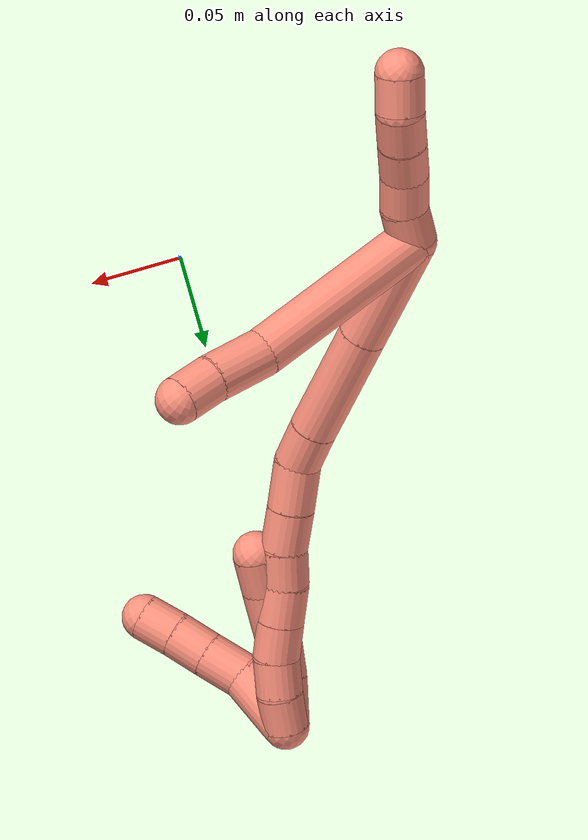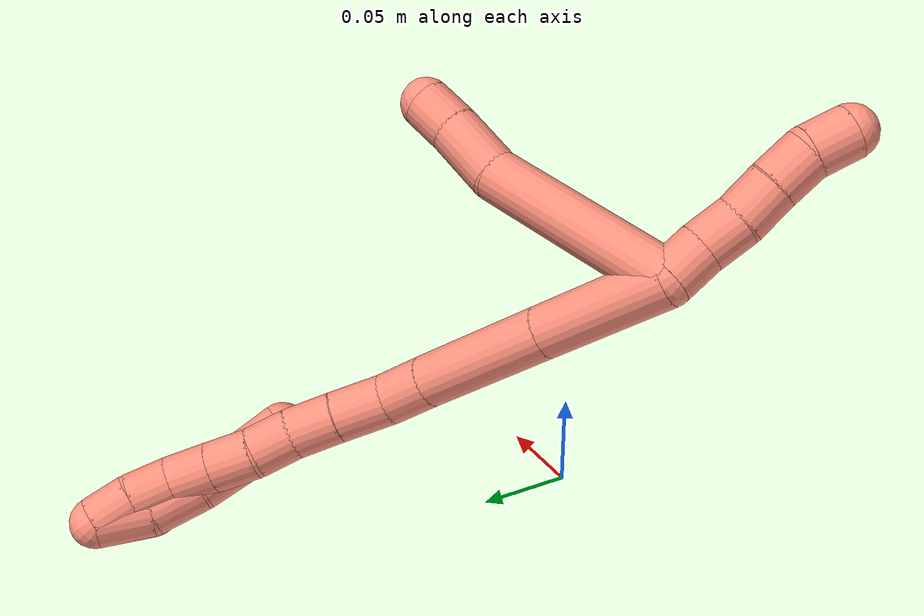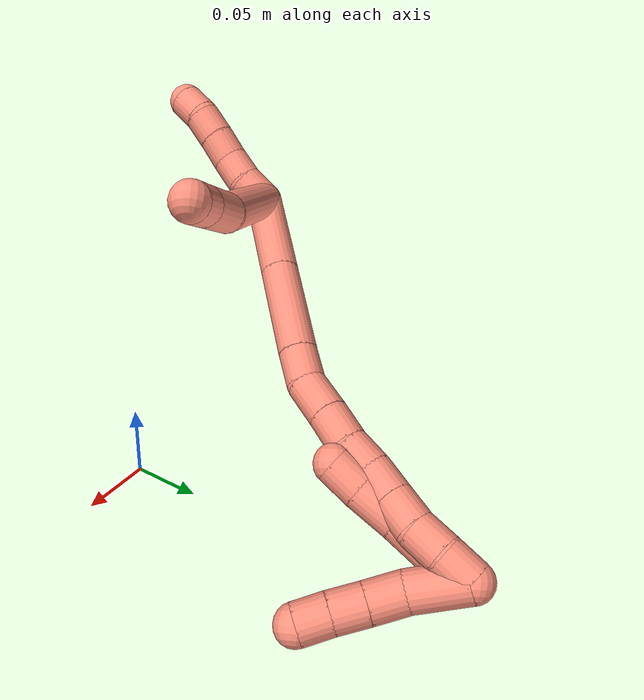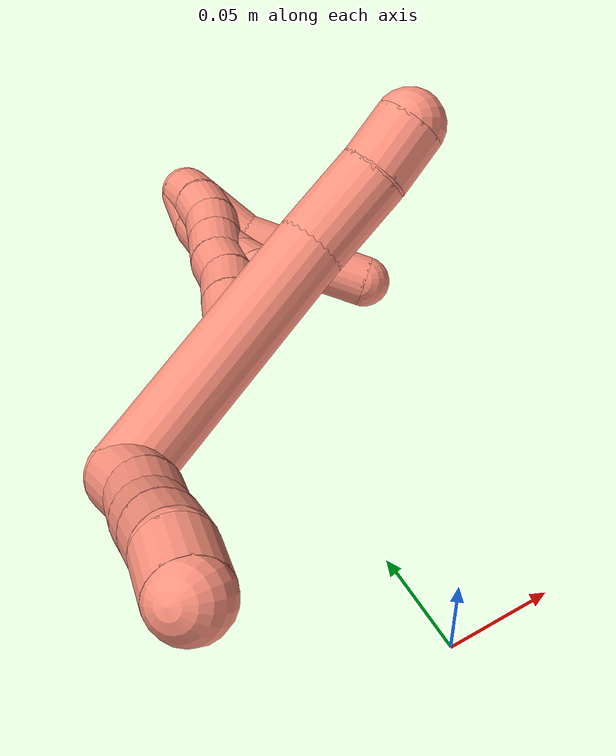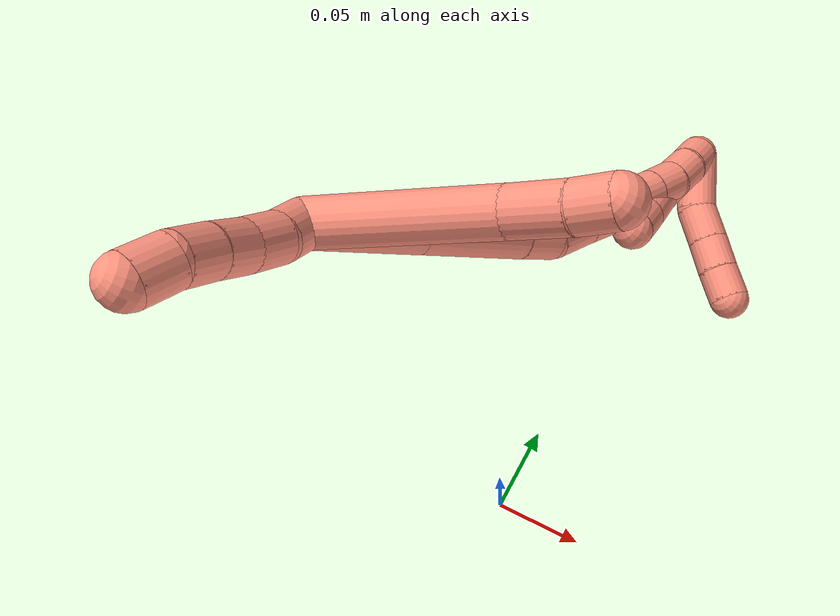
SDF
<sdf version="1.7">
 <world name="default">
  <model name="16">
   <static>0</static>
   <link name="16">
    <collision name="collision-cylinder-e_1_2_8">
     <pose>0.040269 0.012362 -0.024492 -2.67417 0.97273 -2.29546</pose>
     <geometry><cylinder><radius>0.0125</radius><length>0.097452</length></cylinder></geometry>
     <surface>
      <friction><ode><mu>1.16</mu><mu2>1.16</mu2><slip1>0</slip1><slip2>0</slip2></ode></friction>
      <contact><ode><kp>1e+06</kp><kd>1</kd><max_vel>0</max_vel><min_depth>0.001</min_depth></ode></contact>
     </surface>
    </collision>
    <visual name="visual-cylinder-e_1_2_8">
     <pose>0.040269 0.012362 -0.024492 -2.67417 0.97273 -2.29546</pose>
     <geometry><cylinder><radius>0.0125</radius><length>0.097452</length></cylinder></geometry>
     <material><ambient>1 0.576471 0.494118 1</ambient></material>
    </visual>
    <collision name="collision-cylinder-e_2_8_9">
     <pose>0.095536 0.027431 -0.053683 -2.61895 1.22386 -2.41343</pose>
     <geometry><cylinder><radius>0.0125</radius><length>0.031899</length></cylinder></geometry>
     <surface>
      <friction><ode><mu>1.16</mu><mu2>1.16</mu2><slip1>0</slip1><slip2>0</slip2></ode></friction>
      <contact><ode><kp>1e+06</kp><kd>1</kd><max_vel>0</max_vel><min_depth>0.001</min_depth></ode></contact>
     </surface>
    </collision>
    <visual name="visual-cylinder-e_2_8_9">
     <pose>0.095536 0.027431 -0.053683 -2.61895 1.22386 -2.41343</pose>
     <geometry><cylinder><radius>0.0125</radius><length>0.031899</length></cylinder></geometry>
     <material><ambient>1 0.576471 0.494118 1</ambient></material>
    </visual>
    <collision name="collision-cylinder-e_3_9_6">
     <pose>0.119949 0.03279 -0.061691 -2.46598 1.14754 -2.1459</pose>
     <geometry><cylinder><radius>0.0125</radius><length>0.020649</length></cylinder></geometry>
     <surface>
      <friction><ode><mu>1.16</mu><mu2>1.16</mu2><slip1>0</slip1><slip2>0</slip2></ode></friction>
      <contact><ode><kp>1e+06</kp><kd>1</kd><max_vel>0</max_vel><min_depth>0.001</min_depth></ode></contact>
     </surface>
    </collision>
    <visual name="visual-cylinder-e_3_9_6">
     <pose>0.119949 0.03279 -0.061691 -2.46598 1.14754 -2.1459</pose>
     <geometry><cylinder><radius>0.0125</radius><length>0.020649</length></cylinder></geometry>
     <material><ambient>1 0.576471 0.494118 1</ambient></material>
    </visual>
    <collision name="collision-cylinder-e_1_2_10">
     <pose>0.004128 -0.006058 0.006801 0.727687 0.425542 0.164166</pose>
     <geometry><cylinder><radius>0.0125</radius><length>0.02</length></cylinder></geometry>
     <surface>
      <friction><ode><mu>1.16</mu><mu2>1.16</mu2><slip1>0</slip1><slip2>0</slip2></ode></friction>
      <contact><ode><kp>1e+06</kp><kd>1</kd><max_vel>0</max_vel><min_depth>0.001</min_depth></ode></contact>
     </surface>
    </collision>
    <visual name="visual-cylinder-e_1_2_10">
     <pose>0.004128 -0.006058 0.006801 0.727687 0.425542 0.164166</pose>
     <geometry><cylinder><radius>0.0125</radius><length>0.02</length></cylinder></geometry>
     <material><ambient>1 0.576471 0.494118 1</ambient></material>
    </visual>
    <collision name="collision-cylinder-e_2_10_11">
     <pose>0.010929 -0.017238 0.021765 0.560309 0.270576 0.078289</pose>
     <geometry><cylinder><radius>0.0125</radius><length>0.02</length></cylinder></geometry>
     <surface>
      <friction><ode><mu>1.16</mu><mu2>1.16</mu2><slip1>0</slip1><slip2>0</slip2></ode></friction>
      <contact><ode><kp>1e+06</kp><kd>1</kd><max_vel>0</max_vel><min_depth>0.001</min_depth></ode></contact>
     </surface>
    </collision>
    <visual name="visual-cylinder-e_2_10_11">
     <pose>0.010929 -0.017238 0.021765 0.560309 0.270576 0.078289</pose>
     <geometry><cylinder><radius>0.0125</radius><length>0.02</length></cylinder></geometry>
     <material><ambient>1 0.576471 0.494118 1</ambient></material>
    </visual>
    <collision name="collision-cylinder-e_3_11_12">
     <pose>0.017542 -0.026579 0.038093 0.477015 0.405032 0.099764</pose>
     <geometry><cylinder><radius>0.0125</radius><length>0.02</length></cylinder></geometry>
     <surface>
      <friction><ode><mu>1.16</mu><mu2>1.16</mu2><slip1>0</slip1><slip2>0</slip2></ode></friction>
      <contact><ode><kp>1e+06</kp><kd>1</kd><max_vel>0</max_vel><min_depth>0.001</min_depth></ode></contact>
     </surface>
    </collision>
    <visual name="visual-cylinder-e_3_11_12">
     <pose>0.017542 -0.026579 0.038093 0.477015 0.405032 0.099764</pose>
     <geometry><cylinder><radius>0.0125</radius><length>0.02</length></cylinder></geometry>
     <material><ambient>1 0.576471 0.494118 1</ambient></material>
    </visual>
    <collision name="collision-cylinder-e_4_12_13">
     <pose>0.025087 -0.035504 0.054311 0.528812 0.368706 0.100886</pose>
     <geometry><cylinder><radius>0.0125</radius><length>0.02</length></cylinder></geometry>
     <surface>
      <friction><ode><mu>1.16</mu><mu2>1.16</mu2><slip1>0</slip1><slip2>0</slip2></ode></friction>
      <contact><ode><kp>1e+06</kp><kd>1</kd><max_vel>0</max_vel><min_depth>0.001</min_depth></ode></contact>
     </surface>
    </collision>
    <visual name="visual-cylinder-e_4_12_13">
     <pose>0.025087 -0.035504 0.054311 0.528812 0.368706 0.100886</pose>
     <geometry><cylinder><radius>0.0125</radius><length>0.02</length></cylinder></geometry>
     <material><ambient>1 0.576471 0.494118 1</ambient></material>
    </visual>
    <collision name="collision-cylinder-e_5_13_5">
     <pose>0.03008 -0.046944 0.069627 0.747689 0.139378 0.054752</pose>
     <geometry><cylinder><radius>0.0125</radius><length>0.02</length></cylinder></geometry>
     <surface>
      <friction><ode><mu>1.16</mu><mu2>1.16</mu2><slip1>0</slip1><slip2>0</slip2></ode></friction>
      <contact><ode><kp>1e+06</kp><kd>1</kd><max_vel>0</max_vel><min_depth>0.001</min_depth></ode></contact>
     </surface>
    </collision>
    <visual name="visual-cylinder-e_5_13_5">
     <pose>0.03008 -0.046944 0.069627 0.747689 0.139378 0.054752</pose>
     <geometry><cylinder><radius>0.0125</radius><length>0.02</length></cylinder></geometry>
     <material><ambient>1 0.576471 0.494118 1</ambient></material>
    </visual>
    <collision name="collision-cylinder-e_1_2_14">
     <pose>0.002317 0.009862 -0.029474 -2.81869 0.074413 -0.449381</pose>
     <geometry><cylinder><radius>0.0125</radius><length>0.062333</length></cylinder></geometry>
     <surface>
      <friction><ode><mu>1.16</mu><mu2>1.16</mu2><slip1>0</slip1><slip2>0</slip2></ode></friction>
      <contact><ode><kp>1e+06</kp><kd>1</kd><max_vel>0</max_vel><min_depth>0.001</min_depth></ode></contact>
     </surface>
    </collision>
    <visual name="visual-cylinder-e_1_2_14">
     <pose>0.002317 0.009862 -0.029474 -2.81869 0.074413 -0.449381</pose>
     <geometry><cylinder><radius>0.0125</radius><length>0.062333</length></cylinder></geometry>
     <material><ambient>1 0.576471 0.494118 1</ambient></material>
    </visual>
    <collision name="collision-cylinder-e_2_14_15">
     <pose>0.006881 0.029655 -0.088643 -2.81887 0.071642 -0.433397</pose>
     <geometry><cylinder><radius>0.0125</radius><length>0.062783</length></cylinder></geometry>
     <surface>
      <friction><ode><mu>1.16</mu><mu2>1.16</mu2><slip1>0</slip1><slip2>0</slip2></ode></friction>
      <contact><ode><kp>1e+06</kp><kd>1</kd><max_vel>0</max_vel><min_depth>0.001</min_depth></ode></contact>
     </surface>
    </collision>
    <visual name="visual-cylinder-e_2_14_15">
     <pose>0.006881 0.029655 -0.088643 -2.81887 0.071642 -0.433397</pose>
     <geometry><cylinder><radius>0.0125</radius><length>0.062783</length></cylinder></geometry>
     <material><ambient>1 0.576471 0.494118 1</ambient></material>
    </visual>
    <collision name="collision-cylinder-e_3_15_16">
     <pose>0.009611 0.043479 -0.129078 -2.79379 0.042227 -0.239255</pose>
     <geometry><cylinder><radius>0.0125</radius><length>0.02287</length></cylinder></geometry>
     <surface>
      <friction><ode><mu>1.16</mu><mu2>1.16</mu2><slip1>0</slip1><slip2>0</slip2></ode></friction>
      <contact><ode><kp>1e+06</kp><kd>1</kd><max_vel>0</max_vel><min_depth>0.001</min_depth></ode></contact>
     </surface>
    </collision>
    <visual name="visual-cylinder-e_3_15_16">
     <pose>0.009611 0.043479 -0.129078 -2.79379 0.042227 -0.239255</pose>
     <geometry><cylinder><radius>0.0125</radius><length>0.02287</length></cylinder></geometry>
     <material><ambient>1 0.576471 0.494118 1</ambient></material>
    </visual>
    <collision name="collision-cylinder-e_4_16_17">
     <pose>0.010275 0.055556 -0.149915 -2.4605 0.013965 -0.039405</pose>
     <geometry><cylinder><radius>0.0125</radius><length>0.025995</length></cylinder></geometry>
     <surface>
      <friction><ode><mu>1.16</mu><mu2>1.16</mu2><slip1>0</slip1><slip2>0</slip2></ode></friction>
      <contact><ode><kp>1e+06</kp><kd>1</kd><max_vel>0</max_vel><min_depth>0.001</min_depth></ode></contact>
     </surface>
    </collision>
    <visual name="visual-cylinder-e_4_16_17">
     <pose>0.010275 0.055556 -0.149915 -2.4605 0.013965 -0.039405</pose>
     <geometry><cylinder><radius>0.0125</radius><length>0.025995</length></cylinder></geometry>
     <material><ambient>1 0.576471 0.494118 1</ambient></material>
    </visual>
    <collision name="collision-cylinder-e_5_17_18">
     <pose>0.01053 0.070657 -0.16924 -2.49833 0.006354 -0.019068</pose>
     <geometry><cylinder><radius>0.0125</radius><length>0.023067</length></cylinder></geometry>
     <surface>
      <friction><ode><mu>1.16</mu><mu2>1.16</mu2><slip1>0</slip1><slip2>0</slip2></ode></friction>
      <contact><ode><kp>1e+06</kp><kd>1</kd><max_vel>0</max_vel><min_depth>0.001</min_depth></ode></contact>
     </surface>
    </collision>
    <visual name="visual-cylinder-e_5_17_18">
     <pose>0.01053 0.070657 -0.16924 -2.49833 0.006354 -0.019068</pose>
     <geometry><cylinder><radius>0.0125</radius><length>0.023067</length></cylinder></geometry>
     <material><ambient>1 0.576471 0.494118 1</ambient></material>
    </visual>
    <collision name="collision-cylinder-e_6_18_19">
     <pose>0.009117 0.084645 -0.1858 -2.37438 -0.144862 0.355754</pose>
     <geometry><cylinder><radius>0.0125</radius><length>0.020586</length></cylinder></geometry>
     <surface>
      <friction><ode><mu>1.16</mu><mu2>1.16</mu2><slip1>0</slip1><slip2>0</slip2></ode></friction>
      <contact><ode><kp>1e+06</kp><kd>1</kd><max_vel>0</max_vel><min_depth>0.001</min_depth></ode></contact>
     </surface>
    </collision>
    <visual name="visual-cylinder-e_6_18_19">
     <pose>0.009117 0.084645 -0.1858 -2.37438 -0.144862 0.355754</pose>
     <geometry><cylinder><radius>0.0125</radius><length>0.020586</length></cylinder></geometry>
     <material><ambient>1 0.576471 0.494118 1</ambient></material>
    </visual>
    <collision name="collision-cylinder-e_7_19_20">
     <pose>0.007785 0.098559 -0.201285 -2.4432 0.014422 -0.039602</pose>
     <geometry><cylinder><radius>0.0125</radius><length>0.021293</length></cylinder></geometry>
     <surface>
      <friction><ode><mu>1.16</mu><mu2>1.16</mu2><slip1>0</slip1><slip2>0</slip2></ode></friction>
      <contact><ode><kp>1e+06</kp><kd>1</kd><max_vel>0</max_vel><min_depth>0.001</min_depth></ode></contact>
     </surface>
    </collision>
    <visual name="visual-cylinder-e_7_19_20">
     <pose>0.007785 0.098559 -0.201285 -2.4432 0.014422 -0.039602</pose>
     <geometry><cylinder><radius>0.0125</radius><length>0.021293</length></cylinder></geometry>
     <material><ambient>1 0.576471 0.494118 1</ambient></material>
    </visual>
    <collision name="collision-cylinder-e_8_20_21">
     <pose>0.007949 0.112116 -0.217324 -2.43644 0.000969 -0.002632</pose>
     <geometry><cylinder><radius>0.0125</radius><length>0.020711</length></cylinder></geometry>
     <surface>
      <friction><ode><mu>1.16</mu><mu2>1.16</mu2><slip1>0</slip1><slip2>0</slip2></ode></friction>
      <contact><ode><kp>1e+06</kp><kd>1</kd><max_vel>0</max_vel><min_depth>0.001</min_depth></ode></contact>
     </surface>
    </collision>
    <visual name="visual-cylinder-e_8_20_21">
     <pose>0.007949 0.112116 -0.217324 -2.43644 0.000969 -0.002632</pose>
     <geometry><cylinder><radius>0.0125</radius><length>0.020711</length></cylinder></geometry>
     <material><ambient>1 0.576471 0.494118 1</ambient></material>
    </visual>
    <collision name="collision-cylinder-e_9_21_22">
     <pose>0.006722 0.126479 -0.23175 -2.27813 -0.122288 0.26421</pose>
     <geometry><cylinder><radius>0.0125</radius><length>0.020282</length></cylinder></geometry>
     <surface>
      <friction><ode><mu>1.16</mu><mu2>1.16</mu2><slip1>0</slip1><slip2>0</slip2></ode></friction>
      <contact><ode><kp>1e+06</kp><kd>1</kd><max_vel>0</max_vel><min_depth>0.001</min_depth></ode></contact>
     </surface>
    </collision>
    <visual name="visual-cylinder-e_9_21_22">
     <pose>0.006722 0.126479 -0.23175 -2.27813 -0.122288 0.26421</pose>
     <geometry><cylinder><radius>0.0125</radius><length>0.020282</length></cylinder></geometry>
     <material><ambient>1 0.576471 0.494118 1</ambient></material>
    </visual>
    <collision name="collision-cylinder-e_10_22_1">
     <pose>0.002783 0.141218 -0.244867 -2.31868 -0.272413 0.608654</pose>
     <geometry><cylinder><radius>0.0125</radius><length>0.02008</length></cylinder></geometry>
     <surface>
      <friction><ode><mu>1.16</mu><mu2>1.16</mu2><slip1>0</slip1><slip2>0</slip2></ode></friction>
      <contact><ode><kp>1e+06</kp><kd>1</kd><max_vel>0</max_vel><min_depth>0.001</min_depth></ode></contact>
     </surface>
    </collision>
    <visual name="visual-cylinder-e_10_22_1">
     <pose>0.002783 0.141218 -0.244867 -2.31868 -0.272413 0.608654</pose>
     <geometry><cylinder><radius>0.0125</radius><length>0.02008</length></cylinder></geometry>
     <material><ambient>1 0.576471 0.494118 1</ambient></material>
    </visual>
    <collision name="collision-cylinder-e_1_1_23">
     <pose>0.002556 0.130687 -0.25527 1.78467 0.136363 0.169019</pose>
     <geometry><cylinder><radius>0.0125</radius><length>0.036401</length></cylinder></geometry>
     <surface>
      <friction><ode><mu>1.16</mu><mu2>1.16</mu2><slip1>0</slip1><slip2>0</slip2></ode></friction>
      <contact><ode><kp>1e+06</kp><kd>1</kd><max_vel>0</max_vel><min_depth>0.001</min_depth></ode></contact>
     </surface>
    </collision>
    <visual name="visual-cylinder-e_1_1_23">
     <pose>0.002556 0.130687 -0.25527 1.78467 0.136363 0.169019</pose>
     <geometry><cylinder><radius>0.0125</radius><length>0.036401</length></cylinder></geometry>
     <material><ambient>1 0.576471 0.494118 1</ambient></material>
    </visual>
    <collision name="collision-cylinder-e_2_23_24">
     <pose>0.010029 0.10336 -0.262878 1.94223 0.447406 0.642505</pose>
     <geometry><cylinder><radius>0.0125</radius><length>0.023109</length></cylinder></geometry>
     <surface>
      <friction><ode><mu>1.16</mu><mu2>1.16</mu2><slip1>0</slip1><slip2>0</slip2></ode></friction>
      <contact><ode><kp>1e+06</kp><kd>1</kd><max_vel>0</max_vel><min_depth>0.001</min_depth></ode></contact>
     </surface>
    </collision>
    <visual name="visual-cylinder-e_2_23_24">
     <pose>0.010029 0.10336 -0.262878 1.94223 0.447406 0.642505</pose>
     <geometry><cylinder><radius>0.0125</radius><length>0.023109</length></cylinder></geometry>
     <material><ambient>1 0.576471 0.494118 1</ambient></material>
    </visual>
    <collision name="collision-cylinder-e_3_24_25">
     <pose>0.019398 0.084961 -0.269825 1.92012 0.441389 0.620299</pose>
     <geometry><cylinder><radius>0.0125</radius><length>0.020461</length></cylinder></geometry>
     <surface>
      <friction><ode><mu>1.16</mu><mu2>1.16</mu2><slip1>0</slip1><slip2>0</slip2></ode></friction>
      <contact><ode><kp>1e+06</kp><kd>1</kd><max_vel>0</max_vel><min_depth>0.001</min_depth></ode></contact>
     </surface>
    </collision>
    <visual name="visual-cylinder-e_3_24_25">
     <pose>0.019398 0.084961 -0.269825 1.92012 0.441389 0.620299</pose>
     <geometry><cylinder><radius>0.0125</radius><length>0.020461</length></cylinder></geometry>
     <material><ambient>1 0.576471 0.494118 1</ambient></material>
    </visual>
    <collision name="collision-cylinder-e_4_25_4">
     <pose>0.028126 0.067989 -0.276559 1.97762 0.450101 0.669621</pose>
     <geometry><cylinder><radius>0.0125</radius><length>0.020029</length></cylinder></geometry>
     <surface>
      <friction><ode><mu>1.16</mu><mu2>1.16</mu2><slip1>0</slip1><slip2>0</slip2></ode></friction>
      <contact><ode><kp>1e+06</kp><kd>1</kd><max_vel>0</max_vel><min_depth>0.001</min_depth></ode></contact>
     </surface>
    </collision>
    <visual name="visual-cylinder-e_4_25_4">
     <pose>0.028126 0.067989 -0.276559 1.97762 0.450101 0.669621</pose>
     <geometry><cylinder><radius>0.0125</radius><length>0.020029</length></cylinder></geometry>
     <material><ambient>1 0.576471 0.494118 1</ambient></material>
    </visual>
    <collision name="collision-cylinder-e_1_1_26">
     <pose>-0.000601 0.137167 -0.244445 1.00992 -0.051882 -0.028682</pose>
     <geometry><cylinder><radius>0.0125</radius><length>0.026348</length></cylinder></geometry>
     <surface>
      <friction><ode><mu>1.16</mu><mu2>1.16</mu2><slip1>0</slip1><slip2>0</slip2></ode></friction>
      <contact><ode><kp>1e+06</kp><kd>1</kd><max_vel>0</max_vel><min_depth>0.001</min_depth></ode></contact>
     </surface>
    </collision>
    <visual name="visual-cylinder-e_1_1_26">
     <pose>-0.000601 0.137167 -0.244445 1.00992 -0.051882 -0.028682</pose>
     <geometry><cylinder><radius>0.0125</radius><length>0.026348</length></cylinder></geometry>
     <material><ambient>1 0.576471 0.494118 1</ambient></material>
    </visual>
    <collision name="collision-cylinder-e_2_26_27">
     <pose>0.001085 0.116614 -0.229358 0.86092 0.188677 0.08684</pose>
     <geometry><cylinder><radius>0.0125</radius><length>0.025269</length></cylinder></geometry>
     <surface>
      <friction><ode><mu>1.16</mu><mu2>1.16</mu2><slip1>0</slip1><slip2>0</slip2></ode></friction>
      <contact><ode><kp>1e+06</kp><kd>1</kd><max_vel>0</max_vel><min_depth>0.001</min_depth></ode></contact>
     </surface>
    </collision>
    <visual name="visual-cylinder-e_2_26_27">
     <pose>0.001085 0.116614 -0.229358 0.86092 0.188677 0.08684</pose>
     <geometry><cylinder><radius>0.0125</radius><length>0.025269</length></cylinder></geometry>
     <material><ambient>1 0.576471 0.494118 1</ambient></material>
    </visual>
    <collision name="collision-cylinder-e_3_27_28">
     <pose>0.007664 0.097139 -0.212988 0.882108 0.312365 0.148396</pose>
     <geometry><cylinder><radius>0.0125</radius><length>0.02739</length></cylinder></geometry>
     <surface>
      <friction><ode><mu>1.16</mu><mu2>1.16</mu2><slip1>0</slip1><slip2>0</slip2></ode></friction>
      <contact><ode><kp>1e+06</kp><kd>1</kd><max_vel>0</max_vel><min_depth>0.001</min_depth></ode></contact>
     </surface>
    </collision>
    <visual name="visual-cylinder-e_3_27_28">
     <pose>0.007664 0.097139 -0.212988 0.882108 0.312365 0.148396</pose>
     <geometry><cylinder><radius>0.0125</radius><length>0.02739</length></cylinder></geometry>
     <material><ambient>1 0.576471 0.494118 1</ambient></material>
    </visual>
    <collision name="collision-cylinder-e_4_28_3">
     <pose>0.0155 0.080004 -0.197851 0.801077 0.352882 0.150704</pose>
     <geometry><cylinder><radius>0.0125</radius><length>0.020993</length></cylinder></geometry>
     <surface>
      <friction><ode><mu>1.16</mu><mu2>1.16</mu2><slip1>0</slip1><slip2>0</slip2></ode></friction>
      <contact><ode><kp>1e+06</kp><kd>1</kd><max_vel>0</max_vel><min_depth>0.001</min_depth></ode></contact>
     </surface>
    </collision>
    <visual name="visual-cylinder-e_4_28_3">
     <pose>0.0155 0.080004 -0.197851 0.801077 0.352882 0.150704</pose>
     <geometry><cylinder><radius>0.0125</radius><length>0.020993</length></cylinder></geometry>
     <material><ambient>1 0.576471 0.494118 1</ambient></material>
    </visual>
    <collision name="collision-sphere-3">
     <pose>0.019127 0.072931 -0.190996 0 -0 0</pose>
     <geometry><sphere><radius>0.0125</radius></sphere></geometry>
     <surface>
      <friction><ode><mu>1.16</mu><mu2>1.16</mu2><slip1>0</slip1><slip2>0</slip2></ode></friction>
      <contact><ode><kp>1e+06</kp><kd>1</kd><max_vel>0</max_vel><min_depth>0.001</min_depth></ode></contact>
     </surface>
    </collision>
    <visual name="visual-sphere-3">
     <pose>0.019127 0.072931 -0.190996 0 -0 0</pose>
     <geometry><sphere><radius>0.0125</radius></sphere></geometry>
     <material><ambient>1 0.576471 0.494118 1</ambient></material>
    </visual>
    <collision name="collision-sphere-28">
     <pose>0.011872 0.087077 -0.204705 0 -0 0</pose>
     <geometry><sphere><radius>0.0125</radius></sphere></geometry>
     <surface>
      <friction><ode><mu>1.16</mu><mu2>1.16</mu2><slip1>0</slip1><slip2>0</slip2></ode></friction>
      <contact><ode><kp>1e+06</kp><kd>1</kd><max_vel>0</max_vel><min_depth>0.001</min_depth></ode></contact>
     </surface>
    </collision>
    <visual name="visual-sphere-28">
     <pose>0.011872 0.087077 -0.204705 0 -0 0</pose>
     <geometry><sphere><radius>0.0125</radius></sphere></geometry>
     <material><ambient>1 0.576471 0.494118 1</ambient></material>
    </visual>
    <collision name="collision-sphere-27">
     <pose>0.003455 0.107201 -0.22127 0 -0 0</pose>
     <geometry><sphere><radius>0.0125</radius></sphere></geometry>
     <surface>
      <friction><ode><mu>1.16</mu><mu2>1.16</mu2><slip1>0</slip1><slip2>0</slip2></ode></friction>
      <contact><ode><kp>1e+06</kp><kd>1</kd><max_vel>0</max_vel><min_depth>0.001</min_depth></ode></contact>
     </surface>
    </collision>
    <visual name="visual-sphere-27">
     <pose>0.003455 0.107201 -0.22127 0 -0 0</pose>
     <geometry><sphere><radius>0.0125</radius></sphere></geometry>
     <material><ambient>1 0.576471 0.494118 1</ambient></material>
    </visual>
    <collision name="collision-sphere-26">
     <pose>-0.001284 0.126026 -0.237447 0 -0 0</pose>
     <geometry><sphere><radius>0.0125</radius></sphere></geometry>
     <surface>
      <friction><ode><mu>1.16</mu><mu2>1.16</mu2><slip1>0</slip1><slip2>0</slip2></ode></friction>
      <contact><ode><kp>1e+06</kp><kd>1</kd><max_vel>0</max_vel><min_depth>0.001</min_depth></ode></contact>
     </surface>
    </collision>
    <visual name="visual-sphere-26">
     <pose>-0.001284 0.126026 -0.237447 0 -0 0</pose>
     <geometry><sphere><radius>0.0125</radius></sphere></geometry>
     <material><ambient>1 0.576471 0.494118 1</ambient></material>
    </visual>
    <collision name="collision-sphere-4">
     <pose>0.032483 0.059708 -0.280127 0 -0 0</pose>
     <geometry><sphere><radius>0.0125</radius></sphere></geometry>
     <surface>
      <friction><ode><mu>1.16</mu><mu2>1.16</mu2><slip1>0</slip1><slip2>0</slip2></ode></friction>
      <contact><ode><kp>1e+06</kp><kd>1</kd><max_vel>0</max_vel><min_depth>0.001</min_depth></ode></contact>
     </surface>
    </collision>
    <visual name="visual-sphere-4">
     <pose>0.032483 0.059708 -0.280127 0 -0 0</pose>
     <geometry><sphere><radius>0.0125</radius></sphere></geometry>
     <material><ambient>1 0.576471 0.494118 1</ambient></material>
    </visual>
    <collision name="collision-sphere-25">
     <pose>0.023769 0.07627 -0.272991 0 -0 0</pose>
     <geometry><sphere><radius>0.0125</radius></sphere></geometry>
     <surface>
      <friction><ode><mu>1.16</mu><mu2>1.16</mu2><slip1>0</slip1><slip2>0</slip2></ode></friction>
      <contact><ode><kp>1e+06</kp><kd>1</kd><max_vel>0</max_vel><min_depth>0.001</min_depth></ode></contact>
     </surface>
    </collision>
    <visual name="visual-sphere-25">
     <pose>0.023769 0.07627 -0.272991 0 -0 0</pose>
     <geometry><sphere><radius>0.0125</radius></sphere></geometry>
     <material><ambient>1 0.576471 0.494118 1</ambient></material>
    </visual>
    <collision name="collision-sphere-24">
     <pose>0.015028 0.093653 -0.266659 0 -0 0</pose>
     <geometry><sphere><radius>0.0125</radius></sphere></geometry>
     <surface>
      <friction><ode><mu>1.16</mu><mu2>1.16</mu2><slip1>0</slip1><slip2>0</slip2></ode></friction>
      <contact><ode><kp>1e+06</kp><kd>1</kd><max_vel>0</max_vel><min_depth>0.001</min_depth></ode></contact>
     </surface>
    </collision>
    <visual name="visual-sphere-24">
     <pose>0.015028 0.093653 -0.266659 0 -0 0</pose>
     <geometry><sphere><radius>0.0125</radius></sphere></geometry>
     <material><ambient>1 0.576471 0.494118 1</ambient></material>
    </visual>
    <collision name="collision-sphere-23">
     <pose>0.00503 0.113066 -0.259098 0 -0 0</pose>
     <geometry><sphere><radius>0.0125</radius></sphere></geometry>
     <surface>
      <friction><ode><mu>1.16</mu><mu2>1.16</mu2><slip1>0</slip1><slip2>0</slip2></ode></friction>
      <contact><ode><kp>1e+06</kp><kd>1</kd><max_vel>0</max_vel><min_depth>0.001</min_depth></ode></contact>
     </surface>
    </collision>
    <visual name="visual-sphere-23">
     <pose>0.00503 0.113066 -0.259098 0 -0 0</pose>
     <geometry><sphere><radius>0.0125</radius></sphere></geometry>
     <material><ambient>1 0.576471 0.494118 1</ambient></material>
    </visual>
    <collision name="collision-sphere-1">
     <pose>8.2e-05 0.148308 -0.251443 0 -0 0</pose>
     <geometry><sphere><radius>0.0125</radius></sphere></geometry>
     <surface>
      <friction><ode><mu>1.16</mu><mu2>1.16</mu2><slip1>0</slip1><slip2>0</slip2></ode></friction>
      <contact><ode><kp>1e+06</kp><kd>1</kd><max_vel>0</max_vel><min_depth>0.001</min_depth></ode></contact>
     </surface>
    </collision>
    <visual name="visual-sphere-1">
     <pose>8.2e-05 0.148308 -0.251443 0 -0 0</pose>
     <geometry><sphere><radius>0.0125</radius></sphere></geometry>
     <material><ambient>1 0.576471 0.494118 1</ambient></material>
    </visual>
    <collision name="collision-sphere-22">
     <pose>0.005485 0.134129 -0.238291 0 -0 0</pose>
     <geometry><sphere><radius>0.0125</radius></sphere></geometry>
     <surface>
      <friction><ode><mu>1.16</mu><mu2>1.16</mu2><slip1>0</slip1><slip2>0</slip2></ode></friction>
      <contact><ode><kp>1e+06</kp><kd>1</kd><max_vel>0</max_vel><min_depth>0.001</min_depth></ode></contact>
     </surface>
    </collision>
    <visual name="visual-sphere-22">
     <pose>0.005485 0.134129 -0.238291 0 -0 0</pose>
     <geometry><sphere><radius>0.0125</radius></sphere></geometry>
     <material><ambient>1 0.576471 0.494118 1</ambient></material>
    </visual>
    <collision name="collision-sphere-21">
     <pose>0.007959 0.118828 -0.22521 0 -0 0</pose>
     <geometry><sphere><radius>0.0125</radius></sphere></geometry>
     <surface>
      <friction><ode><mu>1.16</mu><mu2>1.16</mu2><slip1>0</slip1><slip2>0</slip2></ode></friction>
      <contact><ode><kp>1e+06</kp><kd>1</kd><max_vel>0</max_vel><min_depth>0.001</min_depth></ode></contact>
     </surface>
    </collision>
    <visual name="visual-sphere-21">
     <pose>0.007959 0.118828 -0.22521 0 -0 0</pose>
     <geometry><sphere><radius>0.0125</radius></sphere></geometry>
     <material><ambient>1 0.576471 0.494118 1</ambient></material>
    </visual>
    <collision name="collision-sphere-11">
     <pose>0.013602 -0.022359 0.029928 0 -0 0</pose>
     <geometry><sphere><radius>0.0125</radius></sphere></geometry>
     <surface>
      <friction><ode><mu>1.16</mu><mu2>1.16</mu2><slip1>0</slip1><slip2>0</slip2></ode></friction>
      <contact><ode><kp>1e+06</kp><kd>1</kd><max_vel>0</max_vel><min_depth>0.001</min_depth></ode></contact>
     </surface>
    </collision>
    <visual name="visual-sphere-11">
     <pose>0.013602 -0.022359 0.029928 0 -0 0</pose>
     <geometry><sphere><radius>0.0125</radius></sphere></geometry>
     <material><ambient>1 0.576471 0.494118 1</ambient></material>
    </visual>
    <collision name="collision-sphere-10">
     <pose>0.008256 -0.012116 0.013602 0 -0 0</pose>
     <geometry><sphere><radius>0.0125</radius></sphere></geometry>
     <surface>
      <friction><ode><mu>1.16</mu><mu2>1.16</mu2><slip1>0</slip1><slip2>0</slip2></ode></friction>
      <contact><ode><kp>1e+06</kp><kd>1</kd><max_vel>0</max_vel><min_depth>0.001</min_depth></ode></contact>
     </surface>
    </collision>
    <visual name="visual-sphere-10">
     <pose>0.008256 -0.012116 0.013602 0 -0 0</pose>
     <geometry><sphere><radius>0.0125</radius></sphere></geometry>
     <material><ambient>1 0.576471 0.494118 1</ambient></material>
    </visual>
    <collision name="collision-sphere-6">
     <pose>0.129362 0.035442 -0.065 0 -0 0</pose>
     <geometry><sphere><radius>0.0125</radius></sphere></geometry>
     <surface>
      <friction><ode><mu>1.16</mu><mu2>1.16</mu2><slip1>0</slip1><slip2>0</slip2></ode></friction>
      <contact><ode><kp>1e+06</kp><kd>1</kd><max_vel>0</max_vel><min_depth>0.001</min_depth></ode></contact>
     </surface>
    </collision>
    <visual name="visual-sphere-6">
     <pose>0.129362 0.035442 -0.065 0 -0 0</pose>
     <geometry><sphere><radius>0.0125</radius></sphere></geometry>
     <material><ambient>1 0.576471 0.494118 1</ambient></material>
    </visual>
    <collision name="collision-sphere-9">
     <pose>0.110535 0.030138 -0.058382 0 -0 0</pose>
     <geometry><sphere><radius>0.0125</radius></sphere></geometry>
     <surface>
      <friction><ode><mu>1.16</mu><mu2>1.16</mu2><slip1>0</slip1><slip2>0</slip2></ode></friction>
      <contact><ode><kp>1e+06</kp><kd>1</kd><max_vel>0</max_vel><min_depth>0.001</min_depth></ode></contact>
     </surface>
    </collision>
    <visual name="visual-sphere-9">
     <pose>0.110535 0.030138 -0.058382 0 -0 0</pose>
     <geometry><sphere><radius>0.0125</radius></sphere></geometry>
     <material><ambient>1 0.576471 0.494118 1</ambient></material>
    </visual>
    <collision name="collision-sphere-2">
     <geometry><sphere><radius>0.0125</radius></sphere></geometry>
     <surface>
      <friction><ode><mu>1.16</mu><mu2>1.16</mu2><slip1>0</slip1><slip2>0</slip2></ode></friction>
      <contact><ode><kp>1e+06</kp><kd>1</kd><max_vel>0</max_vel><min_depth>0.001</min_depth></ode></contact>
     </surface>
    </collision>
    <visual name="visual-sphere-2">
     <geometry><sphere><radius>0.0125</radius></sphere></geometry>
     <material><ambient>1 0.576471 0.494118 1</ambient></material>
    </visual>
    <collision name="collision-sphere-19">
     <pose>0.007631 0.091714 -0.193132 0 -0 0</pose>
     <geometry><sphere><radius>0.0125</radius></sphere></geometry>
     <surface>
      <friction><ode><mu>1.16</mu><mu2>1.16</mu2><slip1>0</slip1><slip2>0</slip2></ode></friction>
      <contact><ode><kp>1e+06</kp><kd>1</kd><max_vel>0</max_vel><min_depth>0.001</min_depth></ode></contact>
     </surface>
    </collision>
    <visual name="visual-sphere-19">
     <pose>0.007631 0.091714 -0.193132 0 -0 0</pose>
     <geometry><sphere><radius>0.0125</radius></sphere></geometry>
     <material><ambient>1 0.576471 0.494118 1</ambient></material>
    </visual>
    <collision name="collision-sphere-8">
     <pose>0.080537 0.024724 -0.048984 0 -0 0</pose>
     <geometry><sphere><radius>0.0125</radius></sphere></geometry>
     <surface>
      <friction><ode><mu>1.16</mu><mu2>1.16</mu2><slip1>0</slip1><slip2>0</slip2></ode></friction>
      <contact><ode><kp>1e+06</kp><kd>1</kd><max_vel>0</max_vel><min_depth>0.001</min_depth></ode></contact>
     </surface>
    </collision>
    <visual name="visual-sphere-8">
     <pose>0.080537 0.024724 -0.048984 0 -0 0</pose>
     <geometry><sphere><radius>0.0125</radius></sphere></geometry>
     <material><ambient>1 0.576471 0.494118 1</ambient></material>
    </visual>
    <collision name="collision-sphere-12">
     <pose>0.021483 -0.030798 0.046258 0 -0 0</pose>
     <geometry><sphere><radius>0.0125</radius></sphere></geometry>
     <surface>
      <friction><ode><mu>1.16</mu><mu2>1.16</mu2><slip1>0</slip1><slip2>0</slip2></ode></friction>
      <contact><ode><kp>1e+06</kp><kd>1</kd><max_vel>0</max_vel><min_depth>0.001</min_depth></ode></contact>
     </surface>
    </collision>
    <visual name="visual-sphere-12">
     <pose>0.021483 -0.030798 0.046258 0 -0 0</pose>
     <geometry><sphere><radius>0.0125</radius></sphere></geometry>
     <material><ambient>1 0.576471 0.494118 1</ambient></material>
    </visual>
    <collision name="collision-sphere-13">
     <pose>0.028691 -0.04021 0.062365 0 -0 0</pose>
     <geometry><sphere><radius>0.0125</radius></sphere></geometry>
     <surface>
      <friction><ode><mu>1.16</mu><mu2>1.16</mu2><slip1>0</slip1><slip2>0</slip2></ode></friction>
      <contact><ode><kp>1e+06</kp><kd>1</kd><max_vel>0</max_vel><min_depth>0.001</min_depth></ode></contact>
     </surface>
    </collision>
    <visual name="visual-sphere-13">
     <pose>0.028691 -0.04021 0.062365 0 -0 0</pose>
     <geometry><sphere><radius>0.0125</radius></sphere></geometry>
     <material><ambient>1 0.576471 0.494118 1</ambient></material>
    </visual>
    <collision name="collision-sphere-5">
     <pose>0.03147 -0.053677 0.076888 0 -0 0</pose>
     <geometry><sphere><radius>0.0125</radius></sphere></geometry>
     <surface>
      <friction><ode><mu>1.16</mu><mu2>1.16</mu2><slip1>0</slip1><slip2>0</slip2></ode></friction>
      <contact><ode><kp>1e+06</kp><kd>1</kd><max_vel>0</max_vel><min_depth>0.001</min_depth></ode></contact>
     </surface>
    </collision>
    <visual name="visual-sphere-5">
     <pose>0.03147 -0.053677 0.076888 0 -0 0</pose>
     <geometry><sphere><radius>0.0125</radius></sphere></geometry>
     <material><ambient>1 0.576471 0.494118 1</ambient></material>
    </visual>
    <collision name="collision-sphere-14">
     <pose>0.004634 0.019725 -0.058948 0 -0 0</pose>
     <geometry><sphere><radius>0.0125</radius></sphere></geometry>
     <surface>
      <friction><ode><mu>1.16</mu><mu2>1.16</mu2><slip1>0</slip1><slip2>0</slip2></ode></friction>
      <contact><ode><kp>1e+06</kp><kd>1</kd><max_vel>0</max_vel><min_depth>0.001</min_depth></ode></contact>
     </surface>
    </collision>
    <visual name="visual-sphere-14">
     <pose>0.004634 0.019725 -0.058948 0 -0 0</pose>
     <geometry><sphere><radius>0.0125</radius></sphere></geometry>
     <material><ambient>1 0.576471 0.494118 1</ambient></material>
    </visual>
    <collision name="collision-sphere-15">
     <pose>0.009128 0.039585 -0.118337 0 -0 0</pose>
     <geometry><sphere><radius>0.0125</radius></sphere></geometry>
     <surface>
      <friction><ode><mu>1.16</mu><mu2>1.16</mu2><slip1>0</slip1><slip2>0</slip2></ode></friction>
      <contact><ode><kp>1e+06</kp><kd>1</kd><max_vel>0</max_vel><min_depth>0.001</min_depth></ode></contact>
     </surface>
    </collision>
    <visual name="visual-sphere-15">
     <pose>0.009128 0.039585 -0.118337 0 -0 0</pose>
     <geometry><sphere><radius>0.0125</radius></sphere></geometry>
     <material><ambient>1 0.576471 0.494118 1</ambient></material>
    </visual>
    <collision name="collision-sphere-16">
     <pose>0.010094 0.047373 -0.139818 0 -0 0</pose>
     <geometry><sphere><radius>0.0125</radius></sphere></geometry>
     <surface>
      <friction><ode><mu>1.16</mu><mu2>1.16</mu2><slip1>0</slip1><slip2>0</slip2></ode></friction>
      <contact><ode><kp>1e+06</kp><kd>1</kd><max_vel>0</max_vel><min_depth>0.001</min_depth></ode></contact>
     </surface>
    </collision>
    <visual name="visual-sphere-16">
     <pose>0.010094 0.047373 -0.139818 0 -0 0</pose>
     <geometry><sphere><radius>0.0125</radius></sphere></geometry>
     <material><ambient>1 0.576471 0.494118 1</ambient></material>
    </visual>
    <collision name="collision-sphere-17">
     <pose>0.010457 0.06374 -0.160012 0 -0 0</pose>
     <geometry><sphere><radius>0.0125</radius></sphere></geometry>
     <surface>
      <friction><ode><mu>1.16</mu><mu2>1.16</mu2><slip1>0</slip1><slip2>0</slip2></ode></friction>
      <contact><ode><kp>1e+06</kp><kd>1</kd><max_vel>0</max_vel><min_depth>0.001</min_depth></ode></contact>
     </surface>
    </collision>
    <visual name="visual-sphere-17">
     <pose>0.010457 0.06374 -0.160012 0 -0 0</pose>
     <geometry><sphere><radius>0.0125</radius></sphere></geometry>
     <material><ambient>1 0.576471 0.494118 1</ambient></material>
    </visual>
    <collision name="collision-sphere-18">
     <pose>0.010603 0.077575 -0.178468 0 -0 0</pose>
     <geometry><sphere><radius>0.0125</radius></sphere></geometry>
     <surface>
      <friction><ode><mu>1.16</mu><mu2>1.16</mu2><slip1>0</slip1><slip2>0</slip2></ode></friction>
      <contact><ode><kp>1e+06</kp><kd>1</kd><max_vel>0</max_vel><min_depth>0.001</min_depth></ode></contact>
     </surface>
    </collision>
    <visual name="visual-sphere-18">
     <pose>0.010603 0.077575 -0.178468 0 -0 0</pose>
     <geometry><sphere><radius>0.0125</radius></sphere></geometry>
     <material><ambient>1 0.576471 0.494118 1</ambient></material>
    </visual>
    <collision name="collision-sphere-20">
     <pose>0.007939 0.105404 -0.209438 0 -0 0</pose>
     <geometry><sphere><radius>0.0125</radius></sphere></geometry>
     <surface>
      <friction><ode><mu>1.16</mu><mu2>1.16</mu2><slip1>0</slip1><slip2>0</slip2></ode></friction>
      <contact><ode><kp>1e+06</kp><kd>1</kd><max_vel>0</max_vel><min_depth>0.001</min_depth></ode></contact>
     </surface>
    </collision>
    <visual name="visual-sphere-20">
     <pose>0.007939 0.105404 -0.209438 0 -0 0</pose>
     <geometry><sphere><radius>0.0125</radius></sphere></geometry>
     <material><ambient>1 0.576471 0.494118 1</ambient></material>
    </visual>
    <inertial>
     <pose>0.02007 0.052488 -0.120795 0 -0 0</pose>
     <mass>0.75</mass>
     <inertia>
      <ixx>1.5e-05</ixx>
      <ixy>0</ixy>
      <ixz>0</ixz>
      <iyy>-1.4e-05</iyy>
      <iyz>0</iyz>
      <izz>-0.000122</izz>
     </inertia>
    </inertial>
   </link>
   <pose>-0.116179 0.029677 0.179377 0.423928 -0.681734 -0.102605</pose>
  </model>
 </world>
</sdf>
